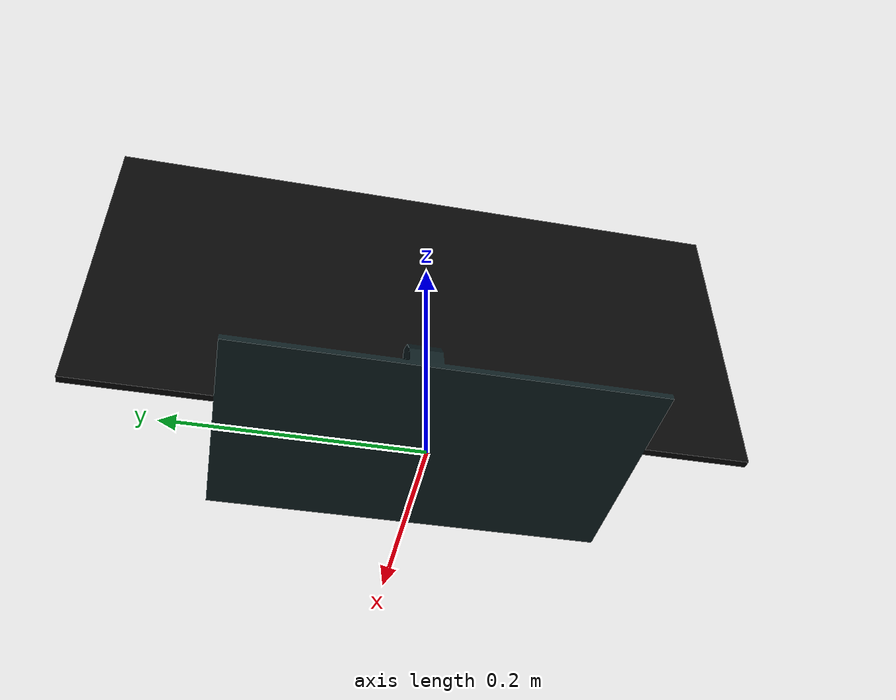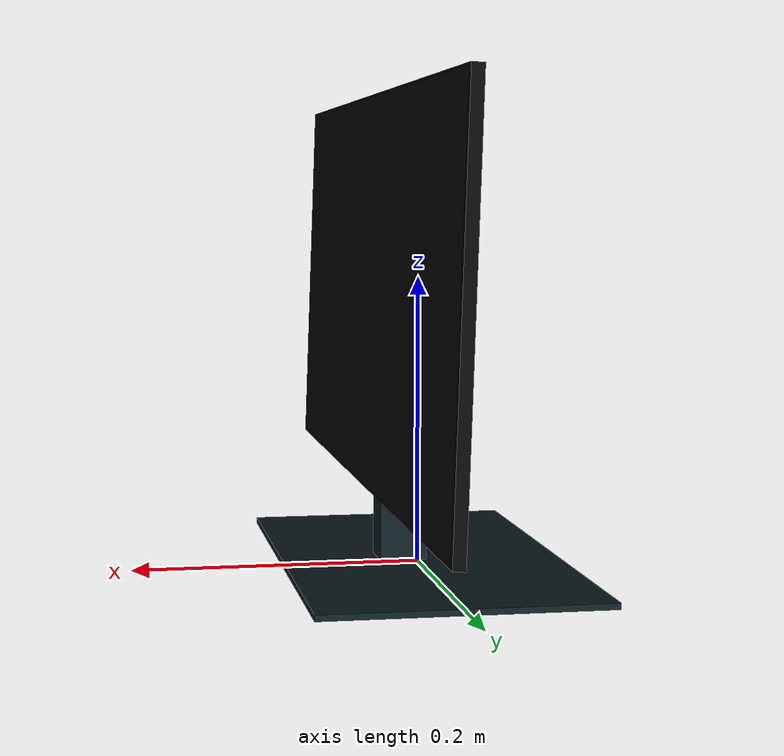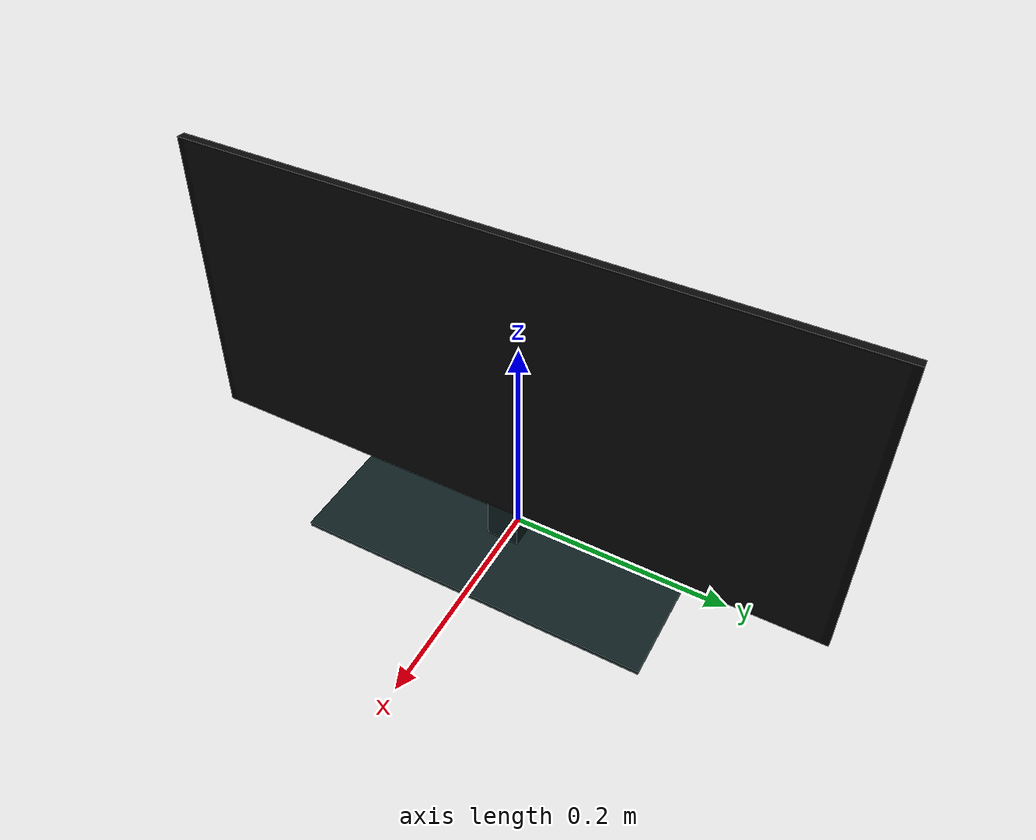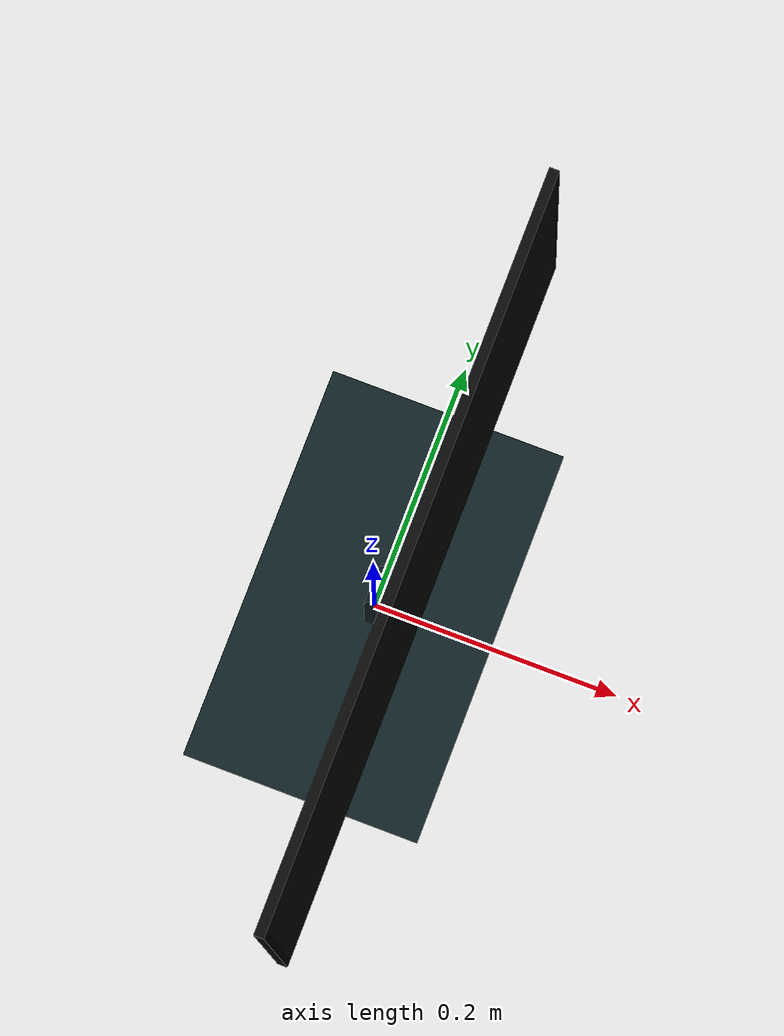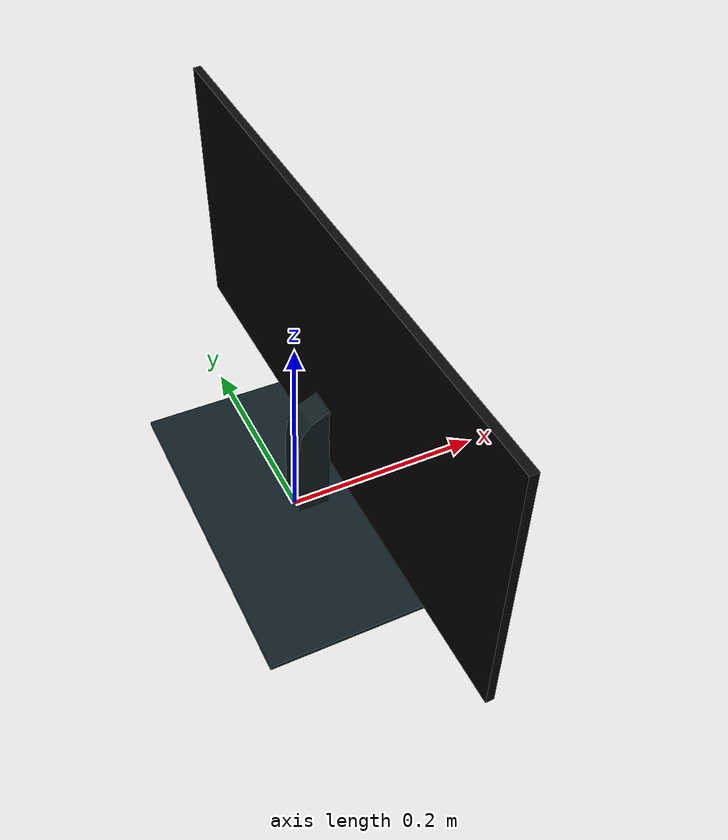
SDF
<?xml version="1.0" ?>
<sdf version="1.5">
  <model name="monitor_pc">
    <link name="link">
      <pose>0 0 0 0 0 0</pose>
      <collision name="collision">
        <geometry>
          <mesh>
            <uri>model://monitor_pc/meshes/model.dae</uri>
          </mesh>
        </geometry>
      </collision>
      <visual name="visual">
        <geometry>
          <mesh>
            <uri>model://monitor_pc/meshes/model.dae</uri>
          </mesh>
        </geometry>
      </visual>
    </link>
    <static>1</static>
  </model>
</sdf>
